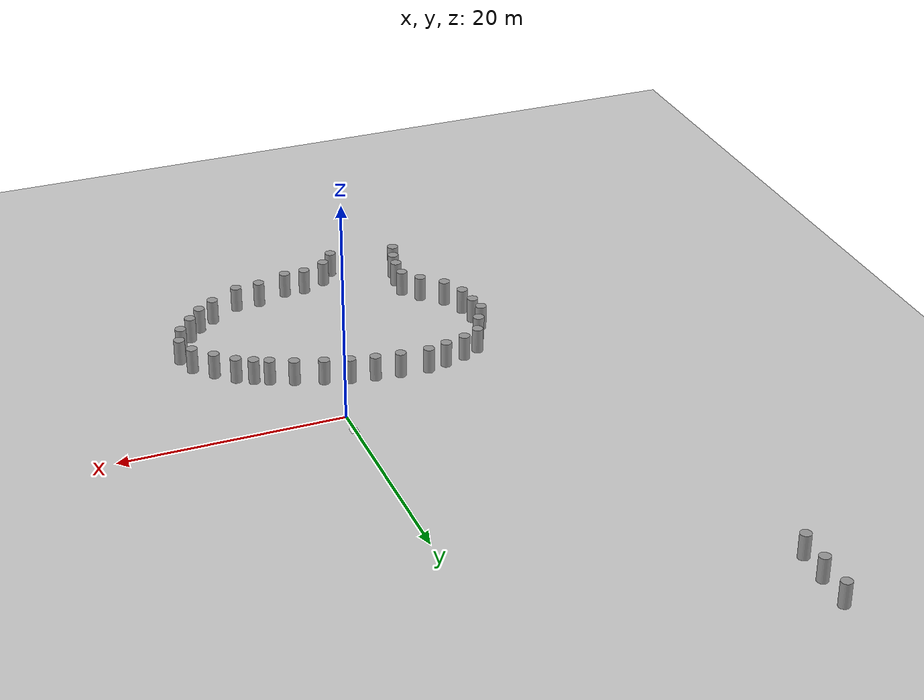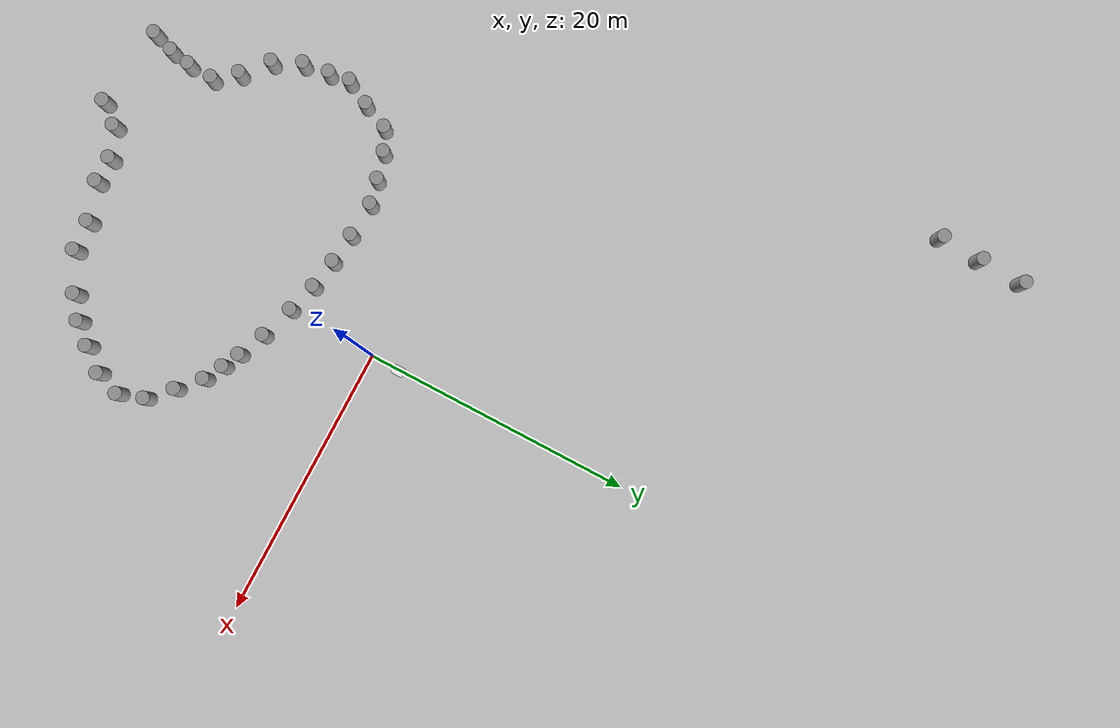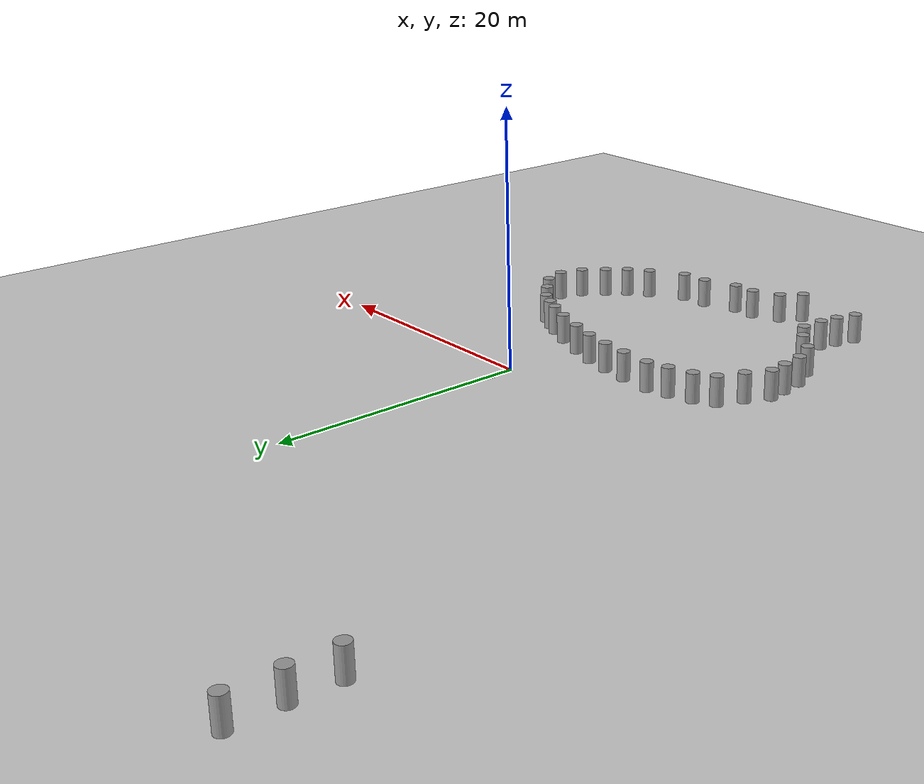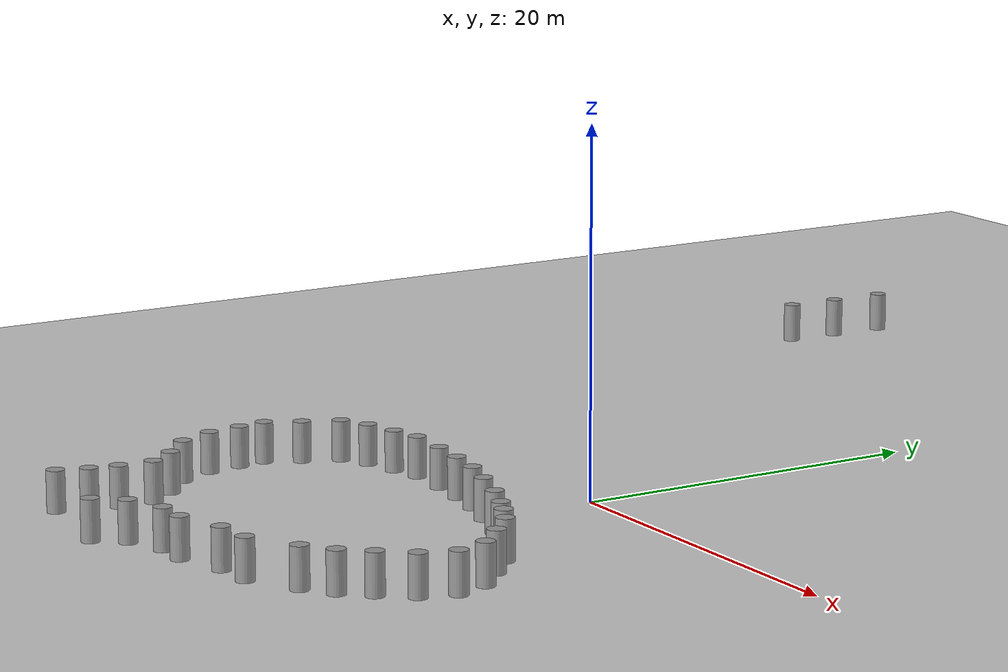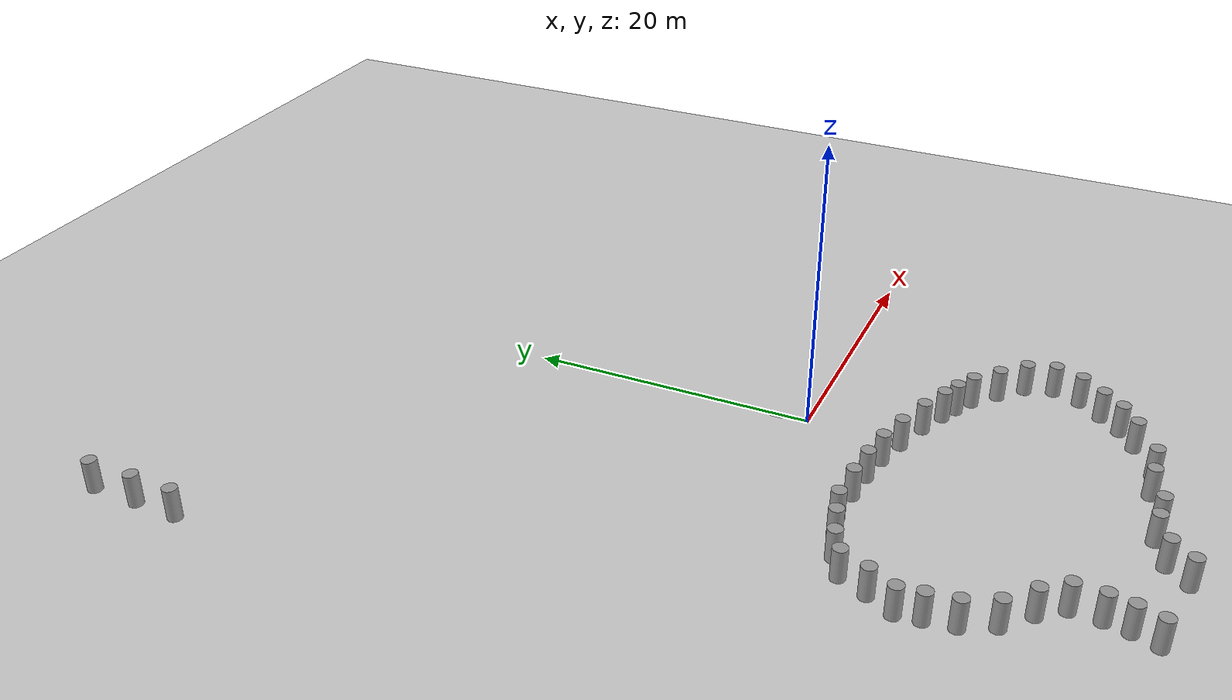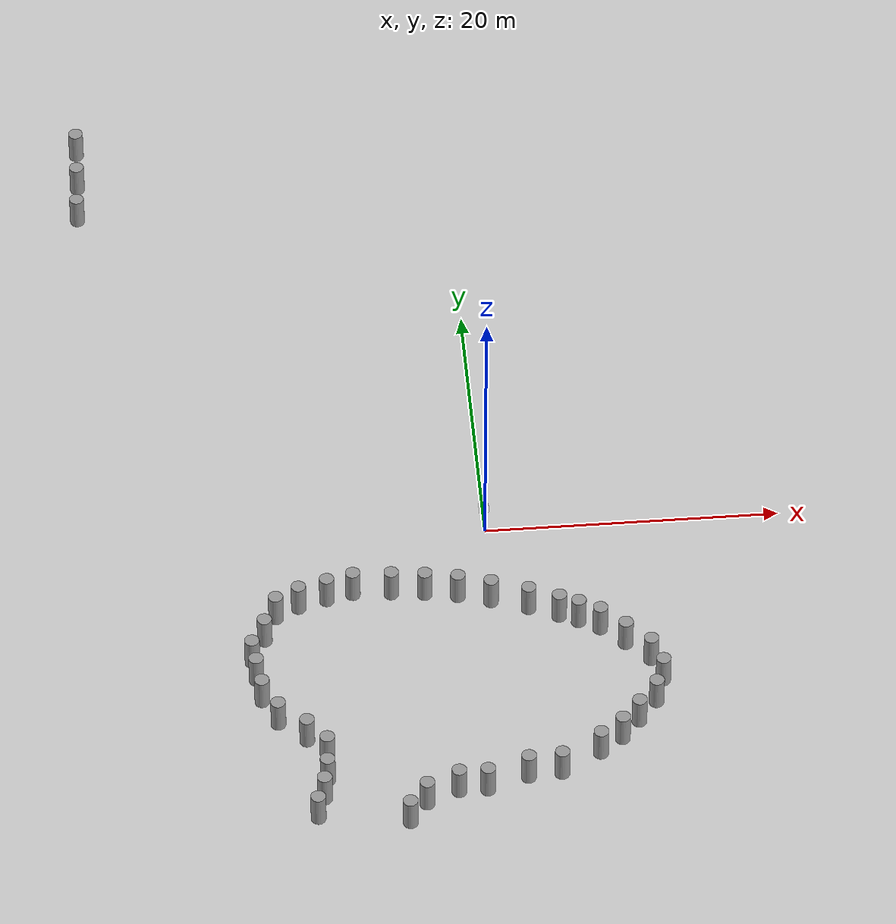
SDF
<sdf version="1.7">
 <world name="default">
  <model name="ground_plane">
   <static>1</static>
   <link name="link">
    <collision name="collision">
     <geometry><plane><normal>0 0 1</normal><size>100 100</size></plane></geometry>
     <surface>
      <contact><collide_bitmask>65535</collide_bitmask></contact>
      <friction><ode><mu>100</mu><mu2>50</mu2></ode></friction>
     </surface>
    </collision>
    <visual name="visual">
     <cast_shadows>0</cast_shadows>
     <geometry><plane><normal>0 0 1</normal><size>100 100</size></plane></geometry>
     <material>
      <script><uri>file://media/materials/scripts/gazebo.material</uri><name>Gazebo/Grey</name></script>
     </material>
    </visual>
   </link>
  </model>
  <model name="aruco_default">
   <static>1</static>
   <link name="aruco_link">
    <visual name="aruco_visual">
     <geometry><plane><normal>0 0 1</normal><size>0.68 0.9</size></plane></geometry>
     <material>
      <diffuse>1 1 1 1</diffuse>
      <specular>0.4 0.4 0.4 1</specular>
      <pbr><metal><albedo_map>materials/textures/pattern.png</albedo_map></metal></pbr>
     </material>
    </visual>
   </link>
   <pose>0.057366 2.14573 0 0 -0 0</pose>
  </model>
  <model name="unit_cylinder_clone_0_clone_33">
   <pose>-13.1083 -24.5379 0.5 0 -0 0</pose>
   <link name="link">
    <inertial>
     <mass>1</mass>
     <inertia><ixx>0.145833</ixx><ixy>0</ixy><ixz>0</ixz><iyy>0.145833</iyy><iyz>0</iyz><izz>0.125</izz></inertia>
    </inertial>
    <collision name="collision">
     <geometry><cylinder><radius>0.5</radius><length>3.4154</length></cylinder></geometry>
    </collision>
    <visual name="visual">
     <geometry><cylinder><radius>0.5</radius><length>3.4154</length></cylinder></geometry>
     <material>
      <script><name>Gazebo/Grey</name><uri>file://media/materials/scripts/gazebo.material</uri></script>
     </material>
    </visual>
   </link>
  </model>
  <model name="unit_cylinder_clone_0_clone_34">
   <pose>-12.5678 -22.8938 0.5 0 -0 0</pose>
   <link name="link">
    <inertial>
     <mass>1</mass>
     <inertia><ixx>0.145833</ixx><ixy>0</ixy><ixz>0</ixz><iyy>0.145833</iyy><iyz>0</iyz><izz>0.125</izz></inertia>
    </inertial>
    <collision name="collision">
     <geometry><cylinder><radius>0.5</radius><length>3.4154</length></cylinder></geometry>
    </collision>
    <visual name="visual">
     <geometry><cylinder><radius>0.5</radius><length>3.4154</length></cylinder></geometry>
     <material>
      <script><name>Gazebo/Grey</name><uri>file://media/materials/scripts/gazebo.material</uri></script>
     </material>
    </visual>
   </link>
  </model>
  <model name="unit_cylinder_clone_0_clone_36">
   <pose>-7.09432 -25.3866 0.5 0 -0 0</pose>
   <link name="link">
    <inertial>
     <mass>1</mass>
     <inertia><ixx>0.145833</ixx><ixy>0</ixy><ixz>0</ixz><iyy>0.145833</iyy><iyz>0</iyz><izz>0.125</izz></inertia>
    </inertial>
    <collision name="collision">
     <geometry><cylinder><radius>0.5</radius><length>3.4154</length></cylinder></geometry>
    </collision>
    <visual name="visual">
     <geometry><cylinder><radius>0.5</radius><length>3.4154</length></cylinder></geometry>
     <material>
      <script><name>Gazebo/Grey</name><uri>file://media/materials/scripts/gazebo.material</uri></script>
     </material>
    </visual>
   </link>
  </model>
  <model name="unit_cylinder_clone_0_clone_37">
   <pose>-12.2662 -21.3267 0.5 0 -0 0</pose>
   <link name="link">
    <inertial>
     <mass>1</mass>
     <inertia><ixx>0.145833</ixx><ixy>0</ixy><ixz>0</ixz><iyy>0.145833</iyy><iyz>0</iyz><izz>0.125</izz></inertia>
    </inertial>
    <collision name="collision">
     <geometry><cylinder><radius>0.5</radius><length>3.4154</length></cylinder></geometry>
    </collision>
    <visual name="visual">
     <geometry><cylinder><radius>0.5</radius><length>3.4154</length></cylinder></geometry>
     <material>
      <script><name>Gazebo/Grey</name><uri>file://media/materials/scripts/gazebo.material</uri></script>
     </material>
    </visual>
   </link>
  </model>
  <model name="unit_cylinder_clone_0_clone_38">
   <pose>-5.87449 -23.8777 0.5 0 -0 0</pose>
   <link name="link">
    <inertial>
     <mass>1</mass>
     <inertia><ixx>0.145833</ixx><ixy>0</ixy><ixz>0</ixz><iyy>0.145833</iyy><iyz>0</iyz><izz>0.125</izz></inertia>
    </inertial>
    <collision name="collision">
     <geometry><cylinder><radius>0.5</radius><length>3.4154</length></cylinder></geometry>
    </collision>
    <visual name="visual">
     <geometry><cylinder><radius>0.5</radius><length>3.4154</length></cylinder></geometry>
     <material>
      <script><name>Gazebo/Grey</name><uri>file://media/materials/scripts/gazebo.material</uri></script>
     </material>
    </visual>
   </link>
  </model>
  <model name="unit_cylinder_clone_0_clone_39">
   <pose>-12.1496 -19.3923 0.5 0 -0 0</pose>
   <link name="link">
    <inertial>
     <mass>1</mass>
     <inertia><ixx>0.145833</ixx><ixy>0</ixy><ixz>0</ixz><iyy>0.145833</iyy><iyz>0</iyz><izz>0.125</izz></inertia>
    </inertial>
    <collision name="collision">
     <geometry><cylinder><radius>0.5</radius><length>3.4154</length></cylinder></geometry>
    </collision>
    <visual name="visual">
     <geometry><cylinder><radius>0.5</radius><length>3.4154</length></cylinder></geometry>
     <material>
      <script><name>Gazebo/Grey</name><uri>file://media/materials/scripts/gazebo.material</uri></script>
     </material>
    </visual>
   </link>
  </model>
  <model name="unit_cylinder_clone_0_clone_40">
   <pose>-3.69066 -22.991 0.5 0 -0 0</pose>
   <link name="link">
    <inertial>
     <mass>1</mass>
     <inertia><ixx>0.145833</ixx><ixy>0</ixy><ixz>0</ixz><iyy>0.145833</iyy><iyz>0</iyz><izz>0.125</izz></inertia>
    </inertial>
    <collision name="collision">
     <geometry><cylinder><radius>0.5</radius><length>3.4154</length></cylinder></geometry>
    </collision>
    <visual name="visual">
     <geometry><cylinder><radius>0.5</radius><length>3.4154</length></cylinder></geometry>
     <material>
      <script><name>Gazebo/Grey</name><uri>file://media/materials/scripts/gazebo.material</uri></script>
     </material>
    </visual>
   </link>
  </model>
  <model name="unit_cylinder_clone_0_clone_41">
   <pose>-1.78616 -23.0066 0.5 0 -0 0</pose>
   <link name="link">
    <inertial>
     <mass>1</mass>
     <inertia><ixx>0.145833</ixx><ixy>0</ixy><ixz>0</ixz><iyy>0.145833</iyy><iyz>0</iyz><izz>0.125</izz></inertia>
    </inertial>
    <collision name="collision">
     <geometry><cylinder><radius>0.5</radius><length>3.4154</length></cylinder></geometry>
    </collision>
    <visual name="visual">
     <geometry><cylinder><radius>0.5</radius><length>3.4154</length></cylinder></geometry>
     <material>
      <script><name>Gazebo/Grey</name><uri>file://media/materials/scripts/gazebo.material</uri></script>
     </material>
    </visual>
   </link>
  </model>
  <model name="unit_cylinder_clone_0_clone_42">
   <pose>0.987367 -22.1201 0.5 0 -0 0</pose>
   <link name="link">
    <inertial>
     <mass>1</mass>
     <inertia><ixx>0.145833</ixx><ixy>0</ixy><ixz>0</ixz><iyy>0.145833</iyy><iyz>0</iyz><izz>0.125</izz></inertia>
    </inertial>
    <collision name="collision">
     <geometry><cylinder><radius>0.5</radius><length>3.4154</length></cylinder></geometry>
    </collision>
    <visual name="visual">
     <geometry><cylinder><radius>0.5</radius><length>3.4154</length></cylinder></geometry>
     <material>
      <script><name>Gazebo/Grey</name><uri>file://media/materials/scripts/gazebo.material</uri></script>
     </material>
    </visual>
   </link>
  </model>
  <model name="unit_cylinder_clone_0_clone_43">
   <pose>-13.3909 -17.7902 0.5 0 -0 0</pose>
   <link name="link">
    <inertial>
     <mass>1</mass>
     <inertia><ixx>0.145833</ixx><ixy>0</ixy><ixz>0</ixz><iyy>0.145833</iyy><iyz>0</iyz><izz>0.125</izz></inertia>
    </inertial>
    <collision name="collision">
     <geometry><cylinder><radius>0.5</radius><length>3.4154</length></cylinder></geometry>
    </collision>
    <visual name="visual">
     <geometry><cylinder><radius>0.5</radius><length>3.4154</length></cylinder></geometry>
     <material>
      <script><name>Gazebo/Grey</name><uri>file://media/materials/scripts/gazebo.material</uri></script>
     </material>
    </visual>
   </link>
  </model>
  <model name="unit_cylinder_clone_0_clone_44">
   <pose>-15.1916 -16.1591 0.5 0 -0 0</pose>
   <link name="link">
    <inertial>
     <mass>1</mass>
     <inertia><ixx>0.145833</ixx><ixy>0</ixy><ixz>0</ixz><iyy>0.145833</iyy><iyz>0</iyz><izz>0.125</izz></inertia>
    </inertial>
    <collision name="collision">
     <geometry><cylinder><radius>0.5</radius><length>3.4154</length></cylinder></geometry>
    </collision>
    <visual name="visual">
     <geometry><cylinder><radius>0.5</radius><length>3.4154</length></cylinder></geometry>
     <material>
      <script><name>Gazebo/Grey</name><uri>file://media/materials/scripts/gazebo.material</uri></script>
     </material>
    </visual>
   </link>
  </model>
  <model name="unit_cylinder_clone_0_clone_45">
   <pose>-16.1365 -14.0923 0.5 0 -0 0</pose>
   <link name="link">
    <inertial>
     <mass>1</mass>
     <inertia><ixx>0.145833</ixx><ixy>0</ixy><ixz>0</ixz><iyy>0.145833</iyy><iyz>0</iyz><izz>0.125</izz></inertia>
    </inertial>
    <collision name="collision">
     <geometry><cylinder><radius>0.5</radius><length>3.4154</length></cylinder></geometry>
    </collision>
    <visual name="visual">
     <geometry><cylinder><radius>0.5</radius><length>3.4154</length></cylinder></geometry>
     <material>
      <script><name>Gazebo/Grey</name><uri>file://media/materials/scripts/gazebo.material</uri></script>
     </material>
    </visual>
   </link>
  </model>
  <model name="unit_cylinder_clone_0_clone_46">
   <pose>-16.3959 -12.1554 0.5 0 -0 0</pose>
   <link name="link">
    <inertial>
     <mass>1</mass>
     <inertia><ixx>0.145833</ixx><ixy>0</ixy><ixz>0</ixz><iyy>0.145833</iyy><iyz>0</iyz><izz>0.125</izz></inertia>
    </inertial>
    <collision name="collision">
     <geometry><cylinder><radius>0.5</radius><length>3.4154</length></cylinder></geometry>
    </collision>
    <visual name="visual">
     <geometry><cylinder><radius>0.5</radius><length>3.4154</length></cylinder></geometry>
     <material>
      <script><name>Gazebo/Grey</name><uri>file://media/materials/scripts/gazebo.material</uri></script>
     </material>
    </visual>
   </link>
  </model>
  <model name="unit_cylinder_clone_0_clone_47">
   <pose>-16.5689 -10.5585 0.5 0 -0 0</pose>
   <link name="link">
    <inertial>
     <mass>1</mass>
     <inertia><ixx>0.145833</ixx><ixy>0</ixy><ixz>0</ixz><iyy>0.145833</iyy><iyz>0</iyz><izz>0.125</izz></inertia>
    </inertial>
    <collision name="collision">
     <geometry><cylinder><radius>0.5</radius><length>3.4154</length></cylinder></geometry>
    </collision>
    <visual name="visual">
     <geometry><cylinder><radius>0.5</radius><length>3.4154</length></cylinder></geometry>
     <material>
      <script><name>Gazebo/Grey</name><uri>file://media/materials/scripts/gazebo.material</uri></script>
     </material>
    </visual>
   </link>
  </model>
  <model name="unit_cylinder_clone_0_clone_48">
   <pose>-15.6165 -8.73278 0.5 0 -0 0</pose>
   <link name="link">
    <inertial>
     <mass>1</mass>
     <inertia><ixx>0.145833</ixx><ixy>0</ixy><ixz>0</ixz><iyy>0.145833</iyy><iyz>0</iyz><izz>0.125</izz></inertia>
    </inertial>
    <collision name="collision">
     <geometry><cylinder><radius>0.5</radius><length>3.4154</length></cylinder></geometry>
    </collision>
    <visual name="visual">
     <geometry><cylinder><radius>0.5</radius><length>3.4154</length></cylinder></geometry>
     <material>
      <script><name>Gazebo/Grey</name><uri>file://media/materials/scripts/gazebo.material</uri></script>
     </material>
    </visual>
   </link>
  </model>
  <model name="unit_cylinder_clone_0_clone_49">
   <pose>3.22405 -21.9689 0.5 0 -0 0</pose>
   <link name="link">
    <inertial>
     <mass>1</mass>
     <inertia><ixx>0.145833</ixx><ixy>0</ixy><ixz>0</ixz><iyy>0.145833</iyy><iyz>0</iyz><izz>0.125</izz></inertia>
    </inertial>
    <collision name="collision">
     <geometry><cylinder><radius>0.5</radius><length>3.4154</length></cylinder></geometry>
    </collision>
    <visual name="visual">
     <geometry><cylinder><radius>0.5</radius><length>3.4154</length></cylinder></geometry>
     <material>
      <script><name>Gazebo/Grey</name><uri>file://media/materials/scripts/gazebo.material</uri></script>
     </material>
    </visual>
   </link>
  </model>
  <model name="unit_cylinder_clone_0_clone_50">
   <pose>5.93469 -20.4274 0.5 0 -0 0</pose>
   <link name="link">
    <inertial>
     <mass>1</mass>
     <inertia><ixx>0.145833</ixx><ixy>0</ixy><ixz>0</ixz><iyy>0.145833</iyy><iyz>0</iyz><izz>0.125</izz></inertia>
    </inertial>
    <collision name="collision">
     <geometry><cylinder><radius>0.5</radius><length>3.4154</length></cylinder></geometry>
    </collision>
    <visual name="visual">
     <geometry><cylinder><radius>0.5</radius><length>3.4154</length></cylinder></geometry>
     <material>
      <script><name>Gazebo/Grey</name><uri>file://media/materials/scripts/gazebo.material</uri></script>
     </material>
    </visual>
   </link>
  </model>
  <model name="unit_cylinder_clone_0_clone_51">
   <pose>7.49589 -19.269 0.5 0 -0 0</pose>
   <link name="link">
    <inertial>
     <mass>1</mass>
     <inertia><ixx>0.145833</ixx><ixy>0</ixy><ixz>0</ixz><iyy>0.145833</iyy><iyz>0</iyz><izz>0.125</izz></inertia>
    </inertial>
    <collision name="collision">
     <geometry><cylinder><radius>0.5</radius><length>3.4154</length></cylinder></geometry>
    </collision>
    <visual name="visual">
     <geometry><cylinder><radius>0.5</radius><length>3.4154</length></cylinder></geometry>
     <material>
      <script><name>Gazebo/Grey</name><uri>file://media/materials/scripts/gazebo.material</uri></script>
     </material>
    </visual>
   </link>
  </model>
  <model name="unit_cylinder_clone_0_clone_52">
   <pose>8.7415 -17.8501 0.5 0 -0 0</pose>
   <link name="link">
    <inertial>
     <mass>1</mass>
     <inertia><ixx>0.145833</ixx><ixy>0</ixy><ixz>0</ixz><iyy>0.145833</iyy><iyz>0</iyz><izz>0.125</izz></inertia>
    </inertial>
    <collision name="collision">
     <geometry><cylinder><radius>0.5</radius><length>3.4154</length></cylinder></geometry>
    </collision>
    <visual name="visual">
     <geometry><cylinder><radius>0.5</radius><length>3.4154</length></cylinder></geometry>
     <material>
      <script><name>Gazebo/Grey</name><uri>file://media/materials/scripts/gazebo.material</uri></script>
     </material>
    </visual>
   </link>
  </model>
  <model name="unit_cylinder_clone_0_clone_53">
   <pose>10.0501 -16.2276 0.5 0 -0 0</pose>
   <link name="link">
    <inertial>
     <mass>1</mass>
     <inertia><ixx>0.145833</ixx><ixy>0</ixy><ixz>0</ixz><iyy>0.145833</iyy><iyz>0</iyz><izz>0.125</izz></inertia>
    </inertial>
    <collision name="collision">
     <geometry><cylinder><radius>0.5</radius><length>3.4154</length></cylinder></geometry>
    </collision>
    <visual name="visual">
     <geometry><cylinder><radius>0.5</radius><length>3.4154</length></cylinder></geometry>
     <material>
      <script><name>Gazebo/Grey</name><uri>file://media/materials/scripts/gazebo.material</uri></script>
     </material>
    </visual>
   </link>
  </model>
  <model name="unit_cylinder_clone_0_clone_54">
   <pose>10.6912 -14.3447 0.5 0 -0 0</pose>
   <link name="link">
    <inertial>
     <mass>1</mass>
     <inertia><ixx>0.145833</ixx><ixy>0</ixy><ixz>0</ixz><iyy>0.145833</iyy><iyz>0</iyz><izz>0.125</izz></inertia>
    </inertial>
    <collision name="collision">
     <geometry><cylinder><radius>0.5</radius><length>3.4154</length></cylinder></geometry>
    </collision>
    <visual name="visual">
     <geometry><cylinder><radius>0.5</radius><length>3.4154</length></cylinder></geometry>
     <material>
      <script><name>Gazebo/Grey</name><uri>file://media/materials/scripts/gazebo.material</uri></script>
     </material>
    </visual>
   </link>
  </model>
  <model name="unit_cylinder_clone_0_clone_55">
   <pose>10.0635 -12.4691 0.5 0 -0 0</pose>
   <link name="link">
    <inertial>
     <mass>1</mass>
     <inertia><ixx>0.145833</ixx><ixy>0</ixy><ixz>0</ixz><iyy>0.145833</iyy><iyz>0</iyz><izz>0.125</izz></inertia>
    </inertial>
    <collision name="collision">
     <geometry><cylinder><radius>0.5</radius><length>3.4154</length></cylinder></geometry>
    </collision>
    <visual name="visual">
     <geometry><cylinder><radius>0.5</radius><length>3.4154</length></cylinder></geometry>
     <material>
      <script><name>Gazebo/Grey</name><uri>file://media/materials/scripts/gazebo.material</uri></script>
     </material>
    </visual>
   </link>
  </model>
  <model name="unit_cylinder_clone_0_clone_56">
   <pose>8.49972 -10.9151 0.5 0 -0 0</pose>
   <link name="link">
    <inertial>
     <mass>1</mass>
     <inertia><ixx>0.145833</ixx><ixy>0</ixy><ixz>0</ixz><iyy>0.145833</iyy><iyz>0</iyz><izz>0.125</izz></inertia>
    </inertial>
    <collision name="collision">
     <geometry><cylinder><radius>0.5</radius><length>3.4154</length></cylinder></geometry>
    </collision>
    <visual name="visual">
     <geometry><cylinder><radius>0.5</radius><length>3.4154</length></cylinder></geometry>
     <material>
      <script><name>Gazebo/Grey</name><uri>file://media/materials/scripts/gazebo.material</uri></script>
     </material>
    </visual>
   </link>
  </model>
  <model name="unit_cylinder_clone_0_clone_57">
   <pose>6.92818 -9.46305 0.5 0 -0 0</pose>
   <link name="link">
    <inertial>
     <mass>1</mass>
     <inertia><ixx>0.145833</ixx><ixy>0</ixy><ixz>0</ixz><iyy>0.145833</iyy><iyz>0</iyz><izz>0.125</izz></inertia>
    </inertial>
    <collision name="collision">
     <geometry><cylinder><radius>0.5</radius><length>3.4154</length></cylinder></geometry>
    </collision>
    <visual name="visual">
     <geometry><cylinder><radius>0.5</radius><length>3.4154</length></cylinder></geometry>
     <material>
      <script><name>Gazebo/Grey</name><uri>file://media/materials/scripts/gazebo.material</uri></script>
     </material>
    </visual>
   </link>
  </model>
  <model name="unit_cylinder_clone_0_clone_58">
   <pose>-14.7328 -6.78153 0.5 0 -0 0</pose>
   <link name="link">
    <inertial>
     <mass>1</mass>
     <inertia><ixx>0.145833</ixx><ixy>0</ixy><ixz>0</ixz><iyy>0.145833</iyy><iyz>0</iyz><izz>0.125</izz></inertia>
    </inertial>
    <collision name="collision">
     <geometry><cylinder><radius>0.5</radius><length>3.4154</length></cylinder></geometry>
    </collision>
    <visual name="visual">
     <geometry><cylinder><radius>0.5</radius><length>3.4154</length></cylinder></geometry>
     <material>
      <script><name>Gazebo/Grey</name><uri>file://media/materials/scripts/gazebo.material</uri></script>
     </material>
    </visual>
   </link>
  </model>
  <model name="unit_cylinder_clone_0_clone_59">
   <pose>-13.1482 -5.97425 0.5 0 -0 0</pose>
   <link name="link">
    <inertial>
     <mass>1</mass>
     <inertia><ixx>0.145833</ixx><ixy>0</ixy><ixz>0</ixz><iyy>0.145833</iyy><iyz>0</iyz><izz>0.125</izz></inertia>
    </inertial>
    <collision name="collision">
     <geometry><cylinder><radius>0.5</radius><length>3.4154</length></cylinder></geometry>
    </collision>
    <visual name="visual">
     <geometry><cylinder><radius>0.5</radius><length>3.4154</length></cylinder></geometry>
     <material>
      <script><name>Gazebo/Grey</name><uri>file://media/materials/scripts/gazebo.material</uri></script>
     </material>
    </visual>
   </link>
  </model>
  <model name="unit_cylinder_clone_0_clone_60">
   <pose>-11.2097 -5.44103 0.5 0 -0 0</pose>
   <link name="link">
    <inertial>
     <mass>1</mass>
     <inertia><ixx>0.145833</ixx><ixy>0</ixy><ixz>0</ixz><iyy>0.145833</iyy><iyz>0</iyz><izz>0.125</izz></inertia>
    </inertial>
    <collision name="collision">
     <geometry><cylinder><radius>0.5</radius><length>3.4154</length></cylinder></geometry>
    </collision>
    <visual name="visual">
     <geometry><cylinder><radius>0.5</radius><length>3.4154</length></cylinder></geometry>
     <material>
      <script><name>Gazebo/Grey</name><uri>file://media/materials/scripts/gazebo.material</uri></script>
     </material>
    </visual>
   </link>
  </model>
  <model name="unit_cylinder_clone_0_clone_61">
   <pose>-9.41878 -5.0312 0.5 0 -0 0</pose>
   <link name="link">
    <inertial>
     <mass>1</mass>
     <inertia><ixx>0.145833</ixx><ixy>0</ixy><ixz>0</ixz><iyy>0.145833</iyy><iyz>0</iyz><izz>0.125</izz></inertia>
    </inertial>
    <collision name="collision">
     <geometry><cylinder><radius>0.5</radius><length>3.4154</length></cylinder></geometry>
    </collision>
    <visual name="visual">
     <geometry><cylinder><radius>0.5</radius><length>3.4154</length></cylinder></geometry>
     <material>
      <script><name>Gazebo/Grey</name><uri>file://media/materials/scripts/gazebo.material</uri></script>
     </material>
    </visual>
   </link>
  </model>
  <model name="unit_cylinder_clone_0_clone_62">
   <pose>-6.82545 -5.18359 0.5 0 -0 0</pose>
   <link name="link">
    <inertial>
     <mass>1</mass>
     <inertia><ixx>0.145833</ixx><ixy>0</ixy><ixz>0</ixz><iyy>0.145833</iyy><iyz>0</iyz><izz>0.125</izz></inertia>
    </inertial>
    <collision name="collision">
     <geometry><cylinder><radius>0.5</radius><length>3.4154</length></cylinder></geometry>
    </collision>
    <visual name="visual">
     <geometry><cylinder><radius>0.5</radius><length>3.4154</length></cylinder></geometry>
     <material>
      <script><name>Gazebo/Grey</name><uri>file://media/materials/scripts/gazebo.material</uri></script>
     </material>
    </visual>
   </link>
  </model>
  <model name="unit_cylinder_clone_0_clone_63">
   <pose>-4.57364 -5.42276 0.5 0 -0 0</pose>
   <link name="link">
    <inertial>
     <mass>1</mass>
     <inertia><ixx>0.145833</ixx><ixy>0</ixy><ixz>0</ixz><iyy>0.145833</iyy><iyz>0</iyz><izz>0.125</izz></inertia>
    </inertial>
    <collision name="collision">
     <geometry><cylinder><radius>0.5</radius><length>3.4154</length></cylinder></geometry>
    </collision>
    <visual name="visual">
     <geometry><cylinder><radius>0.5</radius><length>3.4154</length></cylinder></geometry>
     <material>
      <script><name>Gazebo/Grey</name><uri>file://media/materials/scripts/gazebo.material</uri></script>
     </material>
    </visual>
   </link>
  </model>
  <model name="unit_cylinder_clone_0_clone_64">
   <pose>-2.37185 -5.79406 0.5 0 -0 0</pose>
   <link name="link">
    <inertial>
     <mass>1</mass>
     <inertia><ixx>0.145833</ixx><ixy>0</ixy><ixz>0</ixz><iyy>0.145833</iyy><iyz>0</iyz><izz>0.125</izz></inertia>
    </inertial>
    <collision name="collision">
     <geometry><cylinder><radius>0.5</radius><length>3.4154</length></cylinder></geometry>
    </collision>
    <visual name="visual">
     <geometry><cylinder><radius>0.5</radius><length>3.4154</length></cylinder></geometry>
     <material>
      <script><name>Gazebo/Grey</name><uri>file://media/materials/scripts/gazebo.material</uri></script>
     </material>
    </visual>
   </link>
  </model>
  <model name="unit_cylinder_clone_0_clone_65">
   <pose>-0.181342 -6.42754 0.5 0 -0 0</pose>
   <link name="link">
    <inertial>
     <mass>1</mass>
     <inertia><ixx>0.145833</ixx><ixy>0</ixy><ixz>0</ixz><iyy>0.145833</iyy><iyz>0</iyz><izz>0.125</izz></inertia>
    </inertial>
    <collision name="collision">
     <geometry><cylinder><radius>0.5</radius><length>3.4154</length></cylinder></geometry>
    </collision>
    <visual name="visual">
     <geometry><cylinder><radius>0.5</radius><length>3.4154</length></cylinder></geometry>
     <material>
      <script><name>Gazebo/Grey</name><uri>file://media/materials/scripts/gazebo.material</uri></script>
     </material>
    </visual>
   </link>
  </model>
  <model name="unit_cylinder_clone_0_clone_66">
   <pose>2.29234 -7.25772 0.5 0 -0 0</pose>
   <link name="link">
    <inertial>
     <mass>1</mass>
     <inertia><ixx>0.145833</ixx><ixy>0</ixy><ixz>0</ixz><iyy>0.145833</iyy><iyz>0</iyz><izz>0.125</izz></inertia>
    </inertial>
    <collision name="collision">
     <geometry><cylinder><radius>0.5</radius><length>3.4154</length></cylinder></geometry>
    </collision>
    <visual name="visual">
     <geometry><cylinder><radius>0.5</radius><length>3.4154</length></cylinder></geometry>
     <material>
      <script><name>Gazebo/Grey</name><uri>file://media/materials/scripts/gazebo.material</uri></script>
     </material>
    </visual>
   </link>
  </model>
  <model name="unit_cylinder_clone_0_clone_67">
   <pose>4.27929 -8.10996 0.5 0 -0 0</pose>
   <link name="link">
    <inertial>
     <mass>1</mass>
     <inertia><ixx>0.145833</ixx><ixy>0</ixy><ixz>0</ixz><iyy>0.145833</iyy><iyz>0</iyz><izz>0.125</izz></inertia>
    </inertial>
    <collision name="collision">
     <geometry><cylinder><radius>0.5</radius><length>3.4154</length></cylinder></geometry>
    </collision>
    <visual name="visual">
     <geometry><cylinder><radius>0.5</radius><length>3.4154</length></cylinder></geometry>
     <material>
      <script><name>Gazebo/Grey</name><uri>file://media/materials/scripts/gazebo.material</uri></script>
     </material>
    </visual>
   </link>
  </model>
  <model name="unit_cylinder_clone_0_clone_68">
   <pose>5.54015 -8.70018 0.5 0 -0 0</pose>
   <link name="link">
    <inertial>
     <mass>1</mass>
     <inertia><ixx>0.145833</ixx><ixy>0</ixy><ixz>0</ixz><iyy>0.145833</iyy><iyz>0</iyz><izz>0.125</izz></inertia>
    </inertial>
    <collision name="collision">
     <geometry><cylinder><radius>0.5</radius><length>3.4154</length></cylinder></geometry>
    </collision>
    <visual name="visual">
     <geometry><cylinder><radius>0.5</radius><length>3.4154</length></cylinder></geometry>
     <material>
      <script><name>Gazebo/Grey</name><uri>file://media/materials/scripts/gazebo.material</uri></script>
     </material>
    </visual>
   </link>
  </model>
  <model name="unit_cylinder_clone_0_clone_59_clone">
   <pose>-26.076 35.0591 0.5 0 -0 0</pose>
   <link name="link">
    <inertial>
     <mass>1</mass>
     <inertia><ixx>0.145833</ixx><ixy>0</ixy><ixz>0</ixz><iyy>0.145833</iyy><iyz>0</iyz><izz>0.125</izz></inertia>
    </inertial>
    <collision name="collision">
     <geometry><cylinder><radius>0.5</radius><length>3.4154</length></cylinder></geometry>
    </collision>
    <visual name="visual">
     <geometry><cylinder><radius>0.5</radius><length>3.4154</length></cylinder></geometry>
     <material>
      <script><name>Gazebo/Grey</name><uri>file://media/materials/scripts/gazebo.material</uri></script>
     </material>
    </visual>
   </link>
  </model>
  <model name="unit_cylinder_clone_0_clone_59_clone_clone">
   <pose>-26.2266 31.9009 0.5 0 -0 0</pose>
   <link name="link">
    <inertial>
     <mass>1</mass>
     <inertia><ixx>0.145833</ixx><ixy>0</ixy><ixz>0</ixz><iyy>0.145833</iyy><iyz>0</iyz><izz>0.125</izz></inertia>
    </inertial>
    <collision name="collision">
     <geometry><cylinder><radius>0.5</radius><length>3.4154</length></cylinder></geometry>
    </collision>
    <visual name="visual">
     <geometry><cylinder><radius>0.5</radius><length>3.4154</length></cylinder></geometry>
     <material>
      <script><name>Gazebo/Grey</name><uri>file://media/materials/scripts/gazebo.material</uri></script>
     </material>
    </visual>
   </link>
  </model>
  <model name="unit_cylinder_clone_0_clone_59_clone_clone_0">
   <pose>-25.9839 38.4317 0.5 0 -0 0</pose>
   <link name="link">
    <inertial>
     <mass>1</mass>
     <inertia><ixx>0.145833</ixx><ixy>0</ixy><ixz>0</ixz><iyy>0.145833</iyy><iyz>0</iyz><izz>0.125</izz></inertia>
    </inertial>
    <collision name="collision">
     <geometry><cylinder><radius>0.5</radius><length>3.4154</length></cylinder></geometry>
    </collision>
    <visual name="visual">
     <geometry><cylinder><radius>0.5</radius><length>3.4154</length></cylinder></geometry>
     <material>
      <script><name>Gazebo/Grey</name><uri>file://media/materials/scripts/gazebo.material</uri></script>
     </material>
    </visual>
   </link>
  </model>
 </world>
</sdf>
